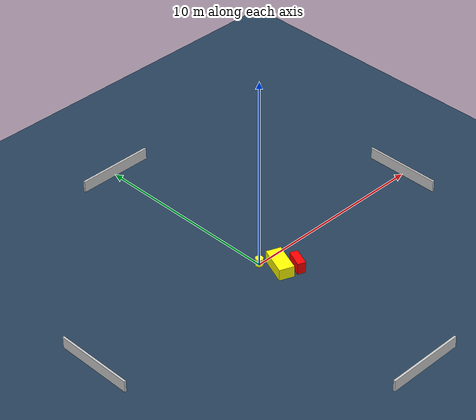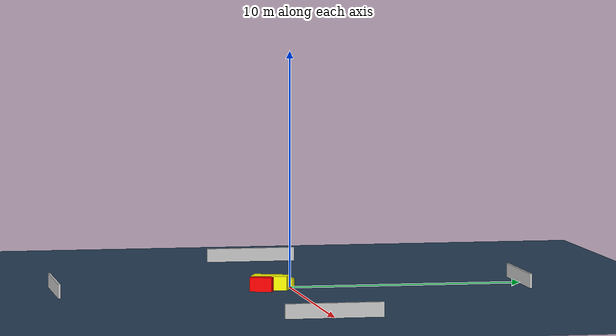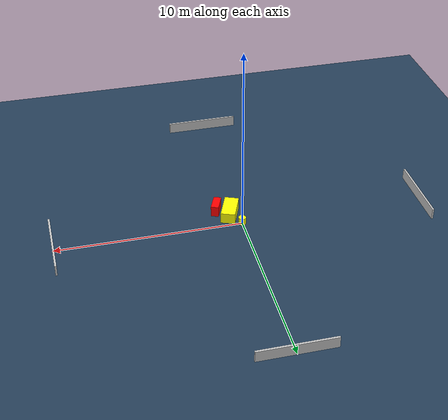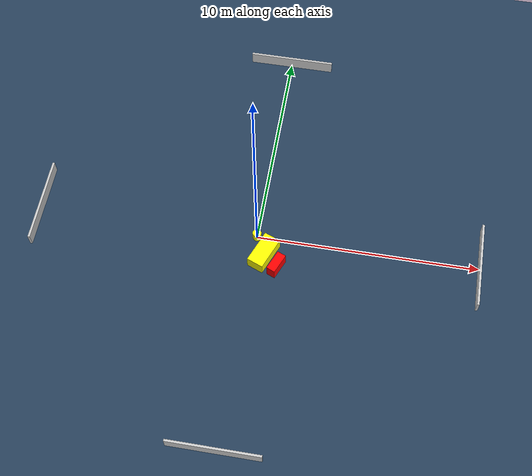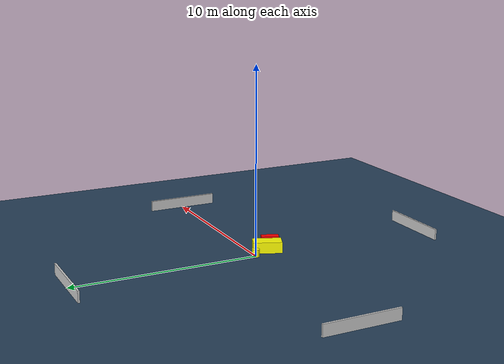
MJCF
<?xml version="1.0" ?>
<mujoco model="generated_environment">
  <option timestep="0.01" integrator="RK4" cone="elliptic"/>
  <default>
    <geom density="1"/>
  </default>
  <asset>
    <texture builtin="gradient" height="3072" name="skybox" rgb1="0.3 0.5 0.7" rgb2="0 0 0" type="skybox" width="512"/>
    <texture builtin="checker" height="300" name="groundplane" rgb1="0.2 0.3 0.4" rgb2="0.1 0.2 0.3" type="2d" width="300"/>
    <material name="groundplane" reflectance="0.2" texrepeat="5 5" texture="groundplane"/>
  </asset>
  <worldbody>
    <light dir="0 0 -1" directional="true" pos="0 0 1.5"/>
    <geom condim="3" friction="0.5 0.005 0.001" material="groundplane" name="floor" pos="0 0 0" size="0 0 0.05" type="plane"/>
    <body name="walls">
      <geom name="wall_1" condim="4" pos="-10.0 0.0 0.3" rgba="0.800000011920929 0.800000011920929 0.800000011920929 1.0" size="0.05 2.0 0.3" type="box"/>
      <geom name="wall_2" condim="4" pos="10.0 0.0 0.3" rgba="0.800000011920929 0.800000011920929 0.800000011920929 1.0" size="0.05 2.0 0.3" type="box"/>
      <geom name="wall_3" condim="4" pos="0.0 -10.0 0.3" rgba="0.800000011920929 0.800000011920929 0.800000011920929 1.0" size="2.0 0.05 0.3" type="box"/>
      <geom name="wall_4" condim="4" pos="0.0 10.0 0.3" rgba="0.800000011920929 0.800000011920929 0.800000011920929 1.0" size="2.0 0.05 0.3" type="box"/>
    </body>
    <body name="robot">
      <joint name="joint_x" type="slide" pos="0 0 0" axis="1 0 0"/>
      <joint name="joint_y" type="slide" pos="0 0 0" axis="0 1 0"/>
      <geom name="robot" type="cylinder" pos="0.0 0.0 0.2" size="0.2 0.2 0.0" mass="5.0" friction="1.0 0.005 0.0001" condim="4" rgba="1.0 1.0 0.0 1.0"/>
    </body>
    <body name="obstacle_1_movable">
      <geom name="obstacle_1_movable" condim="4" pos="0.45618152514311133 -0.8925360254459597 0.3" euler="0 0 338.33863344810777" friction="0.0 0.005 0.001" rgba="1.0 1.0 0.0 1.0" size="0.38224538376421924 0.7655937373818971 0.3" type="box" mass="0.1"/>
      <joint type="free"/>
    </body>
    <body name="obstacle_2_static">
      <geom name="obstacle_2_static" condim="4" pos="1.1001892676186935 -1.3899532351925312 0.3" euler="0 0 247.3443039982123" friction="0.0 0.005 0.001" rgba="1.0 0.0 0.0 1.0" size="0.4713175864568145 0.20598261135346288 0.3" type="box"/>
    </body>
  </worldbody>
  <actuator>
    <motor name="actuator_x" joint="joint_x" gear="1" ctrlrange="-1 1"/>
    <motor name="actuator_y" joint="joint_y" gear="1" ctrlrange="-1 1"/>
  </actuator>
</mujoco>
